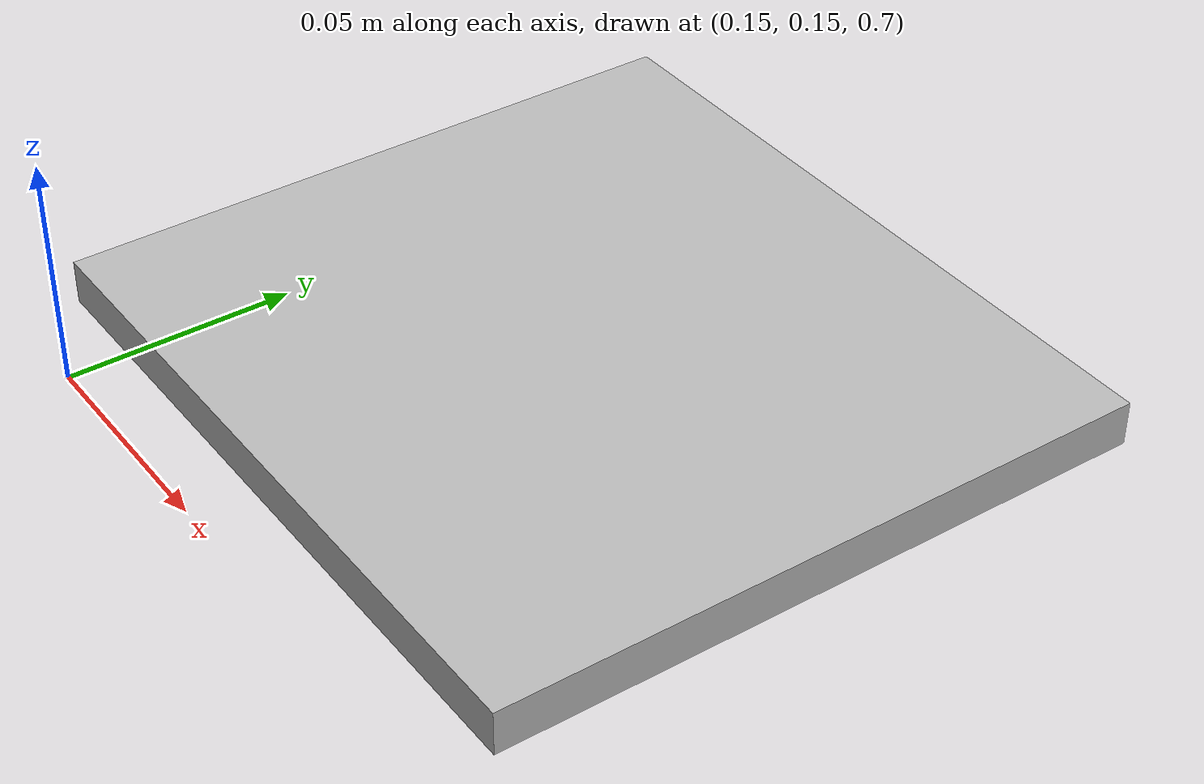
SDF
<?xml version='1.0'?>
<sdf version='1.6'>
  <model name="soporteInvisible">
    <static>true</static>
    <pose>0.214598 0.230172 0.712561 0 0 0</pose>
    <link name="link">

      <!-- Base-->
      <collision name="collision_base">
        <geometry>
          <box>
            <size>0.153821 0.141813 0.009534</size>
          </box>
        </geometry>
      </collision>
      <visual name="visual_base">
        <geometry>
          <box>
            <size>0.153821 0.141813 0.009534</size>
          </box>
        </geometry>
      </visual>
    </link>
  </model>
</sdf>
